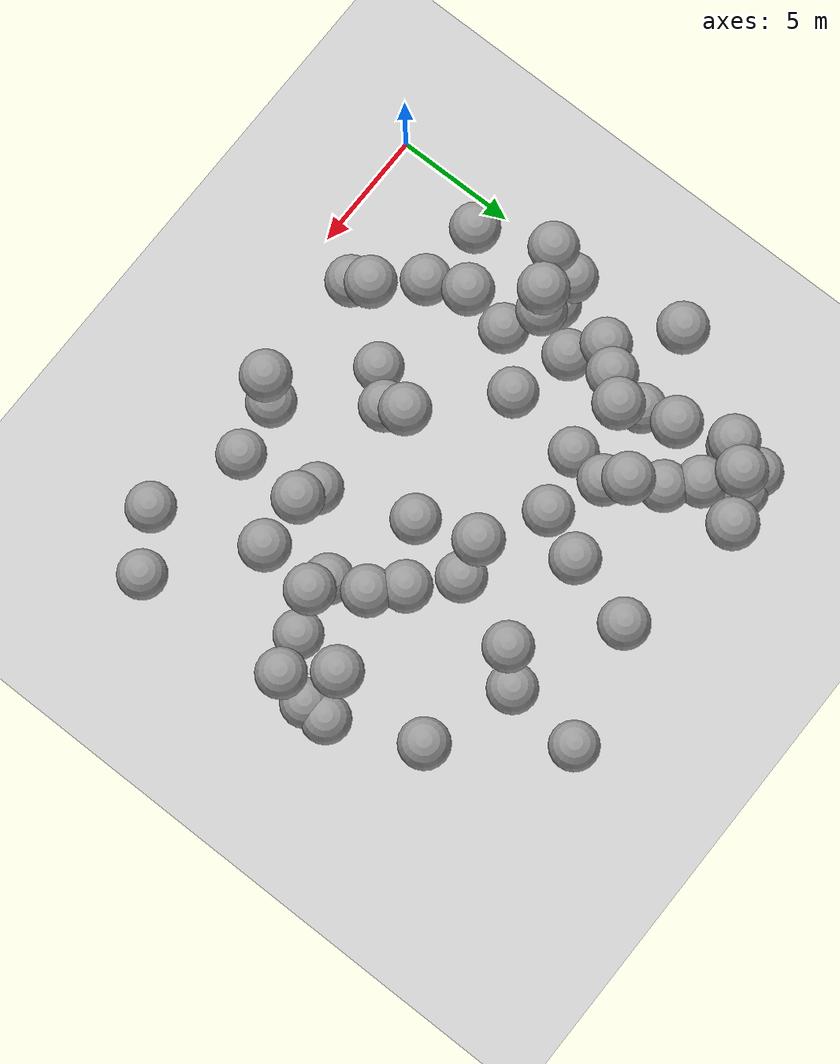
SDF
<sdf version="1.7">
 <world name="default">
  <model name="ground_plane">
   <static>1</static>
   <link name="link">
    <collision name="collision">
     <geometry><plane><normal>0 0 1</normal><size>100 100</size></plane></geometry>
     <surface>
      <contact><collide_bitmask>65535</collide_bitmask></contact>
      <friction><ode><mu>100</mu><mu2>50</mu2></ode></friction>
     </surface>
    </collision>
    <visual name="visual">
     <cast_shadows>0</cast_shadows>
     <geometry><plane><normal>0 0 1</normal><size>100 100</size></plane></geometry>
     <material>
      <script><uri>file://media/materials/scripts/gazebo.material</uri><name>Gazebo/Grey</name></script>
     </material>
    </visual>
   </link>
  </model>
  <model name="sphere_0">
   <static>1</static>
   <pose>3 12 6 0 0 0</pose>
   <link name="link">
    <inertial>
     <mass>418.87902047863906</mass>
     <inertia>
      <ixx>167.55160819145564</ixx>
      <iyy>167.55160819145564</iyy>
      <izz>167.55160819145564</izz>
      <ixy>0</ixy>
      <ixz>0</ixz>
      <iyz>0</iyz>
     </inertia>
    </inertial>
    <collision name="collision"><geometry><sphere><radius>1.0</radius></sphere></geometry></collision>
    <visual name="visual">
     <geometry><sphere><radius>1.0</radius></sphere></geometry>
     <material>
      <script><uri>file://media/materials/scripts/gazebo.material</uri><name>Gazebo/Grey</name></script>
     </material>
    </visual>
   </link>
  </model>
  <model name="sphere_1">
   <static>1</static>
   <pose>2 19 0 0 0 0</pose>
   <link name="link">
    <inertial>
     <mass>418.87902047863906</mass>
     <inertia>
      <ixx>167.55160819145564</ixx>
      <iyy>167.55160819145564</iyy>
      <izz>167.55160819145564</izz>
      <ixy>0</ixy>
      <ixz>0</ixz>
      <iyz>0</iyz>
     </inertia>
    </inertial>
    <collision name="collision"><geometry><sphere><radius>1.0</radius></sphere></geometry></collision>
    <visual name="visual">
     <geometry><sphere><radius>1.0</radius></sphere></geometry>
     <material>
      <script><uri>file://media/materials/scripts/gazebo.material</uri><name>Gazebo/Grey</name></script>
     </material>
    </visual>
   </link>
  </model>
  <model name="sphere_4">
   <static>1</static>
   <pose>11 19 6 0 0 0</pose>
   <link name="link">
    <inertial>
     <mass>418.87902047863906</mass>
     <inertia>
      <ixx>167.55160819145564</ixx>
      <iyy>167.55160819145564</iyy>
      <izz>167.55160819145564</izz>
      <ixy>0</ixy>
      <ixz>0</ixz>
      <iyz>0</iyz>
     </inertia>
    </inertial>
    <collision name="collision"><geometry><sphere><radius>1.0</radius></sphere></geometry></collision>
    <visual name="visual">
     <geometry><sphere><radius>1.0</radius></sphere></geometry>
     <material>
      <script><uri>file://media/materials/scripts/gazebo.material</uri><name>Gazebo/Grey</name></script>
     </material>
    </visual>
   </link>
  </model>
  <model name="sphere_5">
   <static>1</static>
   <pose>6 13 1 0 0 0</pose>
   <link name="link">
    <inertial>
     <mass>418.87902047863906</mass>
     <inertia>
      <ixx>167.55160819145564</ixx>
      <iyy>167.55160819145564</iyy>
      <izz>167.55160819145564</izz>
      <ixy>0</ixy>
      <ixz>0</ixz>
      <iyz>0</iyz>
     </inertia>
    </inertial>
    <collision name="collision"><geometry><sphere><radius>1.0</radius></sphere></geometry></collision>
    <visual name="visual">
     <geometry><sphere><radius>1.0</radius></sphere></geometry>
     <material>
      <script><uri>file://media/materials/scripts/gazebo.material</uri><name>Gazebo/Grey</name></script>
     </material>
    </visual>
   </link>
  </model>
  <model name="sphere_7">
   <static>1</static>
   <pose>19 12 7 0 0 0</pose>
   <link name="link">
    <inertial>
     <mass>418.87902047863906</mass>
     <inertia>
      <ixx>167.55160819145564</ixx>
      <iyy>167.55160819145564</iyy>
      <izz>167.55160819145564</izz>
      <ixy>0</ixy>
      <ixz>0</ixz>
      <iyz>0</iyz>
     </inertia>
    </inertial>
    <collision name="collision"><geometry><sphere><radius>1.0</radius></sphere></geometry></collision>
    <visual name="visual">
     <geometry><sphere><radius>1.0</radius></sphere></geometry>
     <material>
      <script><uri>file://media/materials/scripts/gazebo.material</uri><name>Gazebo/Grey</name></script>
     </material>
    </visual>
   </link>
  </model>
  <model name="sphere_8">
   <static>1</static>
   <pose>1 8 5 0 0 0</pose>
   <link name="link">
    <inertial>
     <mass>418.87902047863906</mass>
     <inertia>
      <ixx>167.55160819145564</ixx>
      <iyy>167.55160819145564</iyy>
      <izz>167.55160819145564</izz>
      <ixy>0</ixy>
      <ixz>0</ixz>
      <iyz>0</iyz>
     </inertia>
    </inertial>
    <collision name="collision"><geometry><sphere><radius>1.0</radius></sphere></geometry></collision>
    <visual name="visual">
     <geometry><sphere><radius>1.0</radius></sphere></geometry>
     <material>
      <script><uri>file://media/materials/scripts/gazebo.material</uri><name>Gazebo/Grey</name></script>
     </material>
    </visual>
   </link>
  </model>
  <model name="sphere_10">
   <static>1</static>
   <pose>14 3 1 0 0 0</pose>
   <link name="link">
    <inertial>
     <mass>418.87902047863906</mass>
     <inertia>
      <ixx>167.55160819145564</ixx>
      <iyy>167.55160819145564</iyy>
      <izz>167.55160819145564</izz>
      <ixy>0</ixy>
      <ixz>0</ixz>
      <iyz>0</iyz>
     </inertia>
    </inertial>
    <collision name="collision"><geometry><sphere><radius>1.0</radius></sphere></geometry></collision>
    <visual name="visual">
     <geometry><sphere><radius>1.0</radius></sphere></geometry>
     <material>
      <script><uri>file://media/materials/scripts/gazebo.material</uri><name>Gazebo/Grey</name></script>
     </material>
    </visual>
   </link>
  </model>
  <model name="sphere_17">
   <static>1</static>
   <pose>12 3 3 0 0 0</pose>
   <link name="link">
    <inertial>
     <mass>418.87902047863906</mass>
     <inertia>
      <ixx>167.55160819145564</ixx>
      <iyy>167.55160819145564</iyy>
      <izz>167.55160819145564</izz>
      <ixy>0</ixy>
      <ixz>0</ixz>
      <iyz>0</iyz>
     </inertia>
    </inertial>
    <collision name="collision"><geometry><sphere><radius>1.0</radius></sphere></geometry></collision>
    <visual name="visual">
     <geometry><sphere><radius>1.0</radius></sphere></geometry>
     <material>
      <script><uri>file://media/materials/scripts/gazebo.material</uri><name>Gazebo/Grey</name></script>
     </material>
    </visual>
   </link>
  </model>
  <model name="sphere_20">
   <static>1</static>
   <pose>18 2 3 0 0 0</pose>
   <link name="link">
    <inertial>
     <mass>418.87902047863906</mass>
     <inertia>
      <ixx>167.55160819145564</ixx>
      <iyy>167.55160819145564</iyy>
      <izz>167.55160819145564</izz>
      <ixy>0</ixy>
      <ixz>0</ixz>
      <iyz>0</iyz>
     </inertia>
    </inertial>
    <collision name="collision"><geometry><sphere><radius>1.0</radius></sphere></geometry></collision>
    <visual name="visual">
     <geometry><sphere><radius>1.0</radius></sphere></geometry>
     <material>
      <script><uri>file://media/materials/scripts/gazebo.material</uri><name>Gazebo/Grey</name></script>
     </material>
    </visual>
   </link>
  </model>
  <model name="sphere_21">
   <static>1</static>
   <pose>10 7 6 0 0 0</pose>
   <link name="link">
    <inertial>
     <mass>418.87902047863906</mass>
     <inertia>
      <ixx>167.55160819145564</ixx>
      <iyy>167.55160819145564</iyy>
      <izz>167.55160819145564</izz>
      <ixy>0</ixy>
      <ixz>0</ixz>
      <iyz>0</iyz>
     </inertia>
    </inertial>
    <collision name="collision"><geometry><sphere><radius>1.0</radius></sphere></geometry></collision>
    <visual name="visual">
     <geometry><sphere><radius>1.0</radius></sphere></geometry>
     <material>
      <script><uri>file://media/materials/scripts/gazebo.material</uri><name>Gazebo/Grey</name></script>
     </material>
    </visual>
   </link>
  </model>
  <model name="sphere_32">
   <static>1</static>
   <pose>6 17 6 0 0 0</pose>
   <link name="link">
    <inertial>
     <mass>418.87902047863906</mass>
     <inertia>
      <ixx>167.55160819145564</ixx>
      <iyy>167.55160819145564</iyy>
      <izz>167.55160819145564</izz>
      <ixy>0</ixy>
      <ixz>0</ixz>
      <iyz>0</iyz>
     </inertia>
    </inertial>
    <collision name="collision"><geometry><sphere><radius>1.0</radius></sphere></geometry></collision>
    <visual name="visual">
     <geometry><sphere><radius>1.0</radius></sphere></geometry>
     <material>
      <script><uri>file://media/materials/scripts/gazebo.material</uri><name>Gazebo/Grey</name></script>
     </material>
    </visual>
   </link>
  </model>
  <model name="sphere_35">
   <static>1</static>
   <pose>18 9 0 0 0 0</pose>
   <link name="link">
    <inertial>
     <mass>418.87902047863906</mass>
     <inertia>
      <ixx>167.55160819145564</ixx>
      <iyy>167.55160819145564</iyy>
      <izz>167.55160819145564</izz>
      <ixy>0</ixy>
      <ixz>0</ixz>
      <iyz>0</iyz>
     </inertia>
    </inertial>
    <collision name="collision"><geometry><sphere><radius>1.0</radius></sphere></geometry></collision>
    <visual name="visual">
     <geometry><sphere><radius>1.0</radius></sphere></geometry>
     <material>
      <script><uri>file://media/materials/scripts/gazebo.material</uri><name>Gazebo/Grey</name></script>
     </material>
    </visual>
   </link>
  </model>
  <model name="sphere_40">
   <static>1</static>
   <pose>19 16 6 0 0 0</pose>
   <link name="link">
    <inertial>
     <mass>418.87902047863906</mass>
     <inertia>
      <ixx>167.55160819145564</ixx>
      <iyy>167.55160819145564</iyy>
      <izz>167.55160819145564</izz>
      <ixy>0</ixy>
      <ixz>0</ixz>
      <iyz>0</iyz>
     </inertia>
    </inertial>
    <collision name="collision"><geometry><sphere><radius>1.0</radius></sphere></geometry></collision>
    <visual name="visual">
     <geometry><sphere><radius>1.0</radius></sphere></geometry>
     <material>
      <script><uri>file://media/materials/scripts/gazebo.material</uri><name>Gazebo/Grey</name></script>
     </material>
    </visual>
   </link>
  </model>
  <model name="sphere_44">
   <static>1</static>
   <pose>18 2 3 0 0 0</pose>
   <link name="link">
    <inertial>
     <mass>418.87902047863906</mass>
     <inertia>
      <ixx>167.55160819145564</ixx>
      <iyy>167.55160819145564</iyy>
      <izz>167.55160819145564</izz>
      <ixy>0</ixy>
      <ixz>0</ixz>
      <iyz>0</iyz>
     </inertia>
    </inertial>
    <collision name="collision"><geometry><sphere><radius>1.0</radius></sphere></geometry></collision>
    <visual name="visual">
     <geometry><sphere><radius>1.0</radius></sphere></geometry>
     <material>
      <script><uri>file://media/materials/scripts/gazebo.material</uri><name>Gazebo/Grey</name></script>
     </material>
    </visual>
   </link>
  </model>
  <model name="sphere_52">
   <static>1</static>
   <pose>5 7 8 0 0 0</pose>
   <link name="link">
    <inertial>
     <mass>418.87902047863906</mass>
     <inertia>
      <ixx>167.55160819145564</ixx>
      <iyy>167.55160819145564</iyy>
      <izz>167.55160819145564</izz>
      <ixy>0</ixy>
      <ixz>0</ixz>
      <iyz>0</iyz>
     </inertia>
    </inertial>
    <collision name="collision"><geometry><sphere><radius>1.0</radius></sphere></geometry></collision>
    <visual name="visual">
     <geometry><sphere><radius>1.0</radius></sphere></geometry>
     <material>
      <script><uri>file://media/materials/scripts/gazebo.material</uri><name>Gazebo/Grey</name></script>
     </material>
    </visual>
   </link>
  </model>
  <model name="sphere_66">
   <static>1</static>
   <pose>8 5 1 0 0 0</pose>
   <link name="link">
    <inertial>
     <mass>418.87902047863906</mass>
     <inertia>
      <ixx>167.55160819145564</ixx>
      <iyy>167.55160819145564</iyy>
      <izz>167.55160819145564</izz>
      <ixy>0</ixy>
      <ixz>0</ixz>
      <iyz>0</iyz>
     </inertia>
    </inertial>
    <collision name="collision"><geometry><sphere><radius>1.0</radius></sphere></geometry></collision>
    <visual name="visual">
     <geometry><sphere><radius>1.0</radius></sphere></geometry>
     <material>
      <script><uri>file://media/materials/scripts/gazebo.material</uri><name>Gazebo/Grey</name></script>
     </material>
    </visual>
   </link>
  </model>
  <model name="sphere_68">
   <static>1</static>
   <pose>3 9 4 0 0 0</pose>
   <link name="link">
    <inertial>
     <mass>418.87902047863906</mass>
     <inertia>
      <ixx>167.55160819145564</ixx>
      <iyy>167.55160819145564</iyy>
      <izz>167.55160819145564</izz>
      <ixy>0</ixy>
      <ixz>0</ixz>
      <iyz>0</iyz>
     </inertia>
    </inertial>
    <collision name="collision"><geometry><sphere><radius>1.0</radius></sphere></geometry></collision>
    <visual name="visual">
     <geometry><sphere><radius>1.0</radius></sphere></geometry>
     <material>
      <script><uri>file://media/materials/scripts/gazebo.material</uri><name>Gazebo/Grey</name></script>
     </material>
    </visual>
   </link>
  </model>
  <model name="sphere_69">
   <static>1</static>
   <pose>1 9 3 0 0 0</pose>
   <link name="link">
    <inertial>
     <mass>418.87902047863906</mass>
     <inertia>
      <ixx>167.55160819145564</ixx>
      <iyy>167.55160819145564</iyy>
      <izz>167.55160819145564</izz>
      <ixy>0</ixy>
      <ixz>0</ixz>
      <iyz>0</iyz>
     </inertia>
    </inertial>
    <collision name="collision"><geometry><sphere><radius>1.0</radius></sphere></geometry></collision>
    <visual name="visual">
     <geometry><sphere><radius>1.0</radius></sphere></geometry>
     <material>
      <script><uri>file://media/materials/scripts/gazebo.material</uri><name>Gazebo/Grey</name></script>
     </material>
    </visual>
   </link>
  </model>
  <model name="sphere_72">
   <static>1</static>
   <pose>5 14 8 0 0 0</pose>
   <link name="link">
    <inertial>
     <mass>418.87902047863906</mass>
     <inertia>
      <ixx>167.55160819145564</ixx>
      <iyy>167.55160819145564</iyy>
      <izz>167.55160819145564</izz>
      <ixy>0</ixy>
      <ixz>0</ixz>
      <iyz>0</iyz>
     </inertia>
    </inertial>
    <collision name="collision"><geometry><sphere><radius>1.0</radius></sphere></geometry></collision>
    <visual name="visual">
     <geometry><sphere><radius>1.0</radius></sphere></geometry>
     <material>
      <script><uri>file://media/materials/scripts/gazebo.material</uri><name>Gazebo/Grey</name></script>
     </material>
    </visual>
   </link>
  </model>
  <model name="sphere_74">
   <static>1</static>
   <pose>14 16 4 0 0 0</pose>
   <link name="link">
    <inertial>
     <mass>418.87902047863906</mass>
     <inertia>
      <ixx>167.55160819145564</ixx>
      <iyy>167.55160819145564</iyy>
      <izz>167.55160819145564</izz>
      <ixy>0</ixy>
      <ixz>0</ixz>
      <iyz>0</iyz>
     </inertia>
    </inertial>
    <collision name="collision"><geometry><sphere><radius>1.0</radius></sphere></geometry></collision>
    <visual name="visual">
     <geometry><sphere><radius>1.0</radius></sphere></geometry>
     <material>
      <script><uri>file://media/materials/scripts/gazebo.material</uri><name>Gazebo/Grey</name></script>
     </material>
    </visual>
   </link>
  </model>
  <model name="sphere_75">
   <static>1</static>
   <pose>4 13 7 0 0 0</pose>
   <link name="link">
    <inertial>
     <mass>418.87902047863906</mass>
     <inertia>
      <ixx>167.55160819145564</ixx>
      <iyy>167.55160819145564</iyy>
      <izz>167.55160819145564</izz>
      <ixy>0</ixy>
      <ixz>0</ixz>
      <iyz>0</iyz>
     </inertia>
    </inertial>
    <collision name="collision"><geometry><sphere><radius>1.0</radius></sphere></geometry></collision>
    <visual name="visual">
     <geometry><sphere><radius>1.0</radius></sphere></geometry>
     <material>
      <script><uri>file://media/materials/scripts/gazebo.material</uri><name>Gazebo/Grey</name></script>
     </material>
    </visual>
   </link>
  </model>
  <model name="sphere_80">
   <static>1</static>
   <pose>14 7 6 0 0 0</pose>
   <link name="link">
    <inertial>
     <mass>418.87902047863906</mass>
     <inertia>
      <ixx>167.55160819145564</ixx>
      <iyy>167.55160819145564</iyy>
      <izz>167.55160819145564</izz>
      <ixy>0</ixy>
      <ixz>0</ixz>
      <iyz>0</iyz>
     </inertia>
    </inertial>
    <collision name="collision"><geometry><sphere><radius>1.0</radius></sphere></geometry></collision>
    <visual name="visual">
     <geometry><sphere><radius>1.0</radius></sphere></geometry>
     <material>
      <script><uri>file://media/materials/scripts/gazebo.material</uri><name>Gazebo/Grey</name></script>
     </material>
    </visual>
   </link>
  </model>
  <model name="sphere_82">
   <static>1</static>
   <pose>16 11 7 0 0 0</pose>
   <link name="link">
    <inertial>
     <mass>418.87902047863906</mass>
     <inertia>
      <ixx>167.55160819145564</ixx>
      <iyy>167.55160819145564</iyy>
      <izz>167.55160819145564</izz>
      <ixy>0</ixy>
      <ixz>0</ixz>
      <iyz>0</iyz>
     </inertia>
    </inertial>
    <collision name="collision"><geometry><sphere><radius>1.0</radius></sphere></geometry></collision>
    <visual name="visual">
     <geometry><sphere><radius>1.0</radius></sphere></geometry>
     <material>
      <script><uri>file://media/materials/scripts/gazebo.material</uri><name>Gazebo/Grey</name></script>
     </material>
    </visual>
   </link>
  </model>
  <model name="sphere_83">
   <static>1</static>
   <pose>20 3 1 0 0 0</pose>
   <link name="link">
    <inertial>
     <mass>418.87902047863906</mass>
     <inertia>
      <ixx>167.55160819145564</ixx>
      <iyy>167.55160819145564</iyy>
      <izz>167.55160819145564</izz>
      <ixy>0</ixy>
      <ixz>0</ixz>
      <iyz>0</iyz>
     </inertia>
    </inertial>
    <collision name="collision"><geometry><sphere><radius>1.0</radius></sphere></geometry></collision>
    <visual name="visual">
     <geometry><sphere><radius>1.0</radius></sphere></geometry>
     <material>
      <script><uri>file://media/materials/scripts/gazebo.material</uri><name>Gazebo/Grey</name></script>
     </material>
    </visual>
   </link>
  </model>
  <model name="sphere_88">
   <static>1</static>
   <pose>10 16 5 0 0 0</pose>
   <link name="link">
    <inertial>
     <mass>418.87902047863906</mass>
     <inertia>
      <ixx>167.55160819145564</ixx>
      <iyy>167.55160819145564</iyy>
      <izz>167.55160819145564</izz>
      <ixy>0</ixy>
      <ixz>0</ixz>
      <iyz>0</iyz>
     </inertia>
    </inertial>
    <collision name="collision"><geometry><sphere><radius>1.0</radius></sphere></geometry></collision>
    <visual name="visual">
     <geometry><sphere><radius>1.0</radius></sphere></geometry>
     <material>
      <script><uri>file://media/materials/scripts/gazebo.material</uri><name>Gazebo/Grey</name></script>
     </material>
    </visual>
   </link>
  </model>
  <model name="sphere_91">
   <static>1</static>
   <pose>7 4 8 0 0 0</pose>
   <link name="link">
    <inertial>
     <mass>418.87902047863906</mass>
     <inertia>
      <ixx>167.55160819145564</ixx>
      <iyy>167.55160819145564</iyy>
      <izz>167.55160819145564</izz>
      <ixy>0</ixy>
      <ixz>0</ixz>
      <iyz>0</iyz>
     </inertia>
    </inertial>
    <collision name="collision"><geometry><sphere><radius>1.0</radius></sphere></geometry></collision>
    <visual name="visual">
     <geometry><sphere><radius>1.0</radius></sphere></geometry>
     <material>
      <script><uri>file://media/materials/scripts/gazebo.material</uri><name>Gazebo/Grey</name></script>
     </material>
    </visual>
   </link>
  </model>
  <model name="sphere_93">
   <static>1</static>
   <pose>16 9 3 0 0 0</pose>
   <link name="link">
    <inertial>
     <mass>418.87902047863906</mass>
     <inertia>
      <ixx>167.55160819145564</ixx>
      <iyy>167.55160819145564</iyy>
      <izz>167.55160819145564</izz>
      <ixy>0</ixy>
      <ixz>0</ixz>
      <iyz>0</iyz>
     </inertia>
    </inertial>
    <collision name="collision"><geometry><sphere><radius>1.0</radius></sphere></geometry></collision>
    <visual name="visual">
     <geometry><sphere><radius>1.0</radius></sphere></geometry>
     <material>
      <script><uri>file://media/materials/scripts/gazebo.material</uri><name>Gazebo/Grey</name></script>
     </material>
    </visual>
   </link>
  </model>
  <model name="sphere_98">
   <static>1</static>
   <pose>17 7 7 0 0 0</pose>
   <link name="link">
    <inertial>
     <mass>418.87902047863906</mass>
     <inertia>
      <ixx>167.55160819145564</ixx>
      <iyy>167.55160819145564</iyy>
      <izz>167.55160819145564</izz>
      <ixy>0</ixy>
      <ixz>0</ixz>
      <iyz>0</iyz>
     </inertia>
    </inertial>
    <collision name="collision"><geometry><sphere><radius>1.0</radius></sphere></geometry></collision>
    <visual name="visual">
     <geometry><sphere><radius>1.0</radius></sphere></geometry>
     <material>
      <script><uri>file://media/materials/scripts/gazebo.material</uri><name>Gazebo/Grey</name></script>
     </material>
    </visual>
   </link>
  </model>
  <model name="sphere_102">
   <static>1</static>
   <pose>6 10 3 0 0 0</pose>
   <link name="link">
    <inertial>
     <mass>418.87902047863906</mass>
     <inertia>
      <ixx>167.55160819145564</ixx>
      <iyy>167.55160819145564</iyy>
      <izz>167.55160819145564</izz>
      <ixy>0</ixy>
      <ixz>0</ixz>
      <iyz>0</iyz>
     </inertia>
    </inertial>
    <collision name="collision"><geometry><sphere><radius>1.0</radius></sphere></geometry></collision>
    <visual name="visual">
     <geometry><sphere><radius>1.0</radius></sphere></geometry>
     <material>
      <script><uri>file://media/materials/scripts/gazebo.material</uri><name>Gazebo/Grey</name></script>
     </material>
    </visual>
   </link>
  </model>
  <model name="sphere_103">
   <static>1</static>
   <pose>4 16 7 0 0 0</pose>
   <link name="link">
    <inertial>
     <mass>418.87902047863906</mass>
     <inertia>
      <ixx>167.55160819145564</ixx>
      <iyy>167.55160819145564</iyy>
      <izz>167.55160819145564</izz>
      <ixy>0</ixy>
      <ixz>0</ixz>
      <iyz>0</iyz>
     </inertia>
    </inertial>
    <collision name="collision"><geometry><sphere><radius>1.0</radius></sphere></geometry></collision>
    <visual name="visual">
     <geometry><sphere><radius>1.0</radius></sphere></geometry>
     <material>
      <script><uri>file://media/materials/scripts/gazebo.material</uri><name>Gazebo/Grey</name></script>
     </material>
    </visual>
   </link>
  </model>
  <model name="sphere_105">
   <static>1</static>
   <pose>4 8 2 0 0 0</pose>
   <link name="link">
    <inertial>
     <mass>418.87902047863906</mass>
     <inertia>
      <ixx>167.55160819145564</ixx>
      <iyy>167.55160819145564</iyy>
      <izz>167.55160819145564</izz>
      <ixy>0</ixy>
      <ixz>0</ixz>
      <iyz>0</iyz>
     </inertia>
    </inertial>
    <collision name="collision"><geometry><sphere><radius>1.0</radius></sphere></geometry></collision>
    <visual name="visual">
     <geometry><sphere><radius>1.0</radius></sphere></geometry>
     <material>
      <script><uri>file://media/materials/scripts/gazebo.material</uri><name>Gazebo/Grey</name></script>
     </material>
    </visual>
   </link>
  </model>
  <model name="sphere_118">
   <static>1</static>
   <pose>5 18 6 0 0 0</pose>
   <link name="link">
    <inertial>
     <mass>418.87902047863906</mass>
     <inertia>
      <ixx>167.55160819145564</ixx>
      <iyy>167.55160819145564</iyy>
      <izz>167.55160819145564</izz>
      <ixy>0</ixy>
      <ixz>0</ixz>
      <iyz>0</iyz>
     </inertia>
    </inertial>
    <collision name="collision"><geometry><sphere><radius>1.0</radius></sphere></geometry></collision>
    <visual name="visual">
     <geometry><sphere><radius>1.0</radius></sphere></geometry>
     <material>
      <script><uri>file://media/materials/scripts/gazebo.material</uri><name>Gazebo/Grey</name></script>
     </material>
    </visual>
   </link>
  </model>
  <model name="sphere_123">
   <static>1</static>
   <pose>2 5 4 0 0 0</pose>
   <link name="link">
    <inertial>
     <mass>418.87902047863906</mass>
     <inertia>
      <ixx>167.55160819145564</ixx>
      <iyy>167.55160819145564</iyy>
      <izz>167.55160819145564</izz>
      <ixy>0</ixy>
      <ixz>0</ixz>
      <iyz>0</iyz>
     </inertia>
    </inertial>
    <collision name="collision"><geometry><sphere><radius>1.0</radius></sphere></geometry></collision>
    <visual name="visual">
     <geometry><sphere><radius>1.0</radius></sphere></geometry>
     <material>
      <script><uri>file://media/materials/scripts/gazebo.material</uri><name>Gazebo/Grey</name></script>
     </material>
    </visual>
   </link>
  </model>
  <model name="sphere_127">
   <static>1</static>
   <pose>6 20 8 0 0 0</pose>
   <link name="link">
    <inertial>
     <mass>418.87902047863906</mass>
     <inertia>
      <ixx>167.55160819145564</ixx>
      <iyy>167.55160819145564</iyy>
      <izz>167.55160819145564</izz>
      <ixy>0</ixy>
      <ixz>0</ixz>
      <iyz>0</iyz>
     </inertia>
    </inertial>
    <collision name="collision"><geometry><sphere><radius>1.0</radius></sphere></geometry></collision>
    <visual name="visual">
     <geometry><sphere><radius>1.0</radius></sphere></geometry>
     <material>
      <script><uri>file://media/materials/scripts/gazebo.material</uri><name>Gazebo/Grey</name></script>
     </material>
    </visual>
   </link>
  </model>
  <model name="sphere_129">
   <static>1</static>
   <pose>3 18 6 0 0 0</pose>
   <link name="link">
    <inertial>
     <mass>418.87902047863906</mass>
     <inertia>
      <ixx>167.55160819145564</ixx>
      <iyy>167.55160819145564</iyy>
      <izz>167.55160819145564</izz>
      <ixy>0</ixy>
      <ixz>0</ixz>
      <iyz>0</iyz>
     </inertia>
    </inertial>
    <collision name="collision"><geometry><sphere><radius>1.0</radius></sphere></geometry></collision>
    <visual name="visual">
     <geometry><sphere><radius>1.0</radius></sphere></geometry>
     <material>
      <script><uri>file://media/materials/scripts/gazebo.material</uri><name>Gazebo/Grey</name></script>
     </material>
    </visual>
   </link>
  </model>
  <model name="sphere_131">
   <static>1</static>
   <pose>20 12 1 0 0 0</pose>
   <link name="link">
    <inertial>
     <mass>418.87902047863906</mass>
     <inertia>
      <ixx>167.55160819145564</ixx>
      <iyy>167.55160819145564</iyy>
      <izz>167.55160819145564</izz>
      <ixy>0</ixy>
      <ixz>0</ixz>
      <iyz>0</iyz>
     </inertia>
    </inertial>
    <collision name="collision"><geometry><sphere><radius>1.0</radius></sphere></geometry></collision>
    <visual name="visual">
     <geometry><sphere><radius>1.0</radius></sphere></geometry>
     <material>
      <script><uri>file://media/materials/scripts/gazebo.material</uri><name>Gazebo/Grey</name></script>
     </material>
    </visual>
   </link>
  </model>
  <model name="sphere_134">
   <static>1</static>
   <pose>3 18 5 0 0 0</pose>
   <link name="link">
    <inertial>
     <mass>418.87902047863906</mass>
     <inertia>
      <ixx>167.55160819145564</ixx>
      <iyy>167.55160819145564</iyy>
      <izz>167.55160819145564</izz>
      <ixy>0</ixy>
      <ixz>0</ixz>
      <iyz>0</iyz>
     </inertia>
    </inertial>
    <collision name="collision"><geometry><sphere><radius>1.0</radius></sphere></geometry></collision>
    <visual name="visual">
     <geometry><sphere><radius>1.0</radius></sphere></geometry>
     <material>
      <script><uri>file://media/materials/scripts/gazebo.material</uri><name>Gazebo/Grey</name></script>
     </material>
    </visual>
   </link>
  </model>
  <model name="sphere_135">
   <static>1</static>
   <pose>1 14 7 0 0 0</pose>
   <link name="link">
    <inertial>
     <mass>418.87902047863906</mass>
     <inertia>
      <ixx>167.55160819145564</ixx>
      <iyy>167.55160819145564</iyy>
      <izz>167.55160819145564</izz>
      <ixy>0</ixy>
      <ixz>0</ixz>
      <iyz>0</iyz>
     </inertia>
    </inertial>
    <collision name="collision"><geometry><sphere><radius>1.0</radius></sphere></geometry></collision>
    <visual name="visual">
     <geometry><sphere><radius>1.0</radius></sphere></geometry>
     <material>
      <script><uri>file://media/materials/scripts/gazebo.material</uri><name>Gazebo/Grey</name></script>
     </material>
    </visual>
   </link>
  </model>
  <model name="sphere_139">
   <static>1</static>
   <pose>3 14 1 0 0 0</pose>
   <link name="link">
    <inertial>
     <mass>418.87902047863906</mass>
     <inertia>
      <ixx>167.55160819145564</ixx>
      <iyy>167.55160819145564</iyy>
      <izz>167.55160819145564</izz>
      <ixy>0</ixy>
      <ixz>0</ixz>
      <iyz>0</iyz>
     </inertia>
    </inertial>
    <collision name="collision"><geometry><sphere><radius>1.0</radius></sphere></geometry></collision>
    <visual name="visual">
     <geometry><sphere><radius>1.0</radius></sphere></geometry>
     <material>
      <script><uri>file://media/materials/scripts/gazebo.material</uri><name>Gazebo/Grey</name></script>
     </material>
    </visual>
   </link>
  </model>
  <model name="sphere_143">
   <static>1</static>
   <pose>15 12 7 0 0 0</pose>
   <link name="link">
    <inertial>
     <mass>418.87902047863906</mass>
     <inertia>
      <ixx>167.55160819145564</ixx>
      <iyy>167.55160819145564</iyy>
      <izz>167.55160819145564</izz>
      <ixy>0</ixy>
      <ixz>0</ixz>
      <iyz>0</iyz>
     </inertia>
    </inertial>
    <collision name="collision"><geometry><sphere><radius>1.0</radius></sphere></geometry></collision>
    <visual name="visual">
     <geometry><sphere><radius>1.0</radius></sphere></geometry>
     <material>
      <script><uri>file://media/materials/scripts/gazebo.material</uri><name>Gazebo/Grey</name></script>
     </material>
    </visual>
   </link>
  </model>
  <model name="sphere_147">
   <static>1</static>
   <pose>2 9 2 0 0 0</pose>
   <link name="link">
    <inertial>
     <mass>418.87902047863906</mass>
     <inertia>
      <ixx>167.55160819145564</ixx>
      <iyy>167.55160819145564</iyy>
      <izz>167.55160819145564</izz>
      <ixy>0</ixy>
      <ixz>0</ixz>
      <iyz>0</iyz>
     </inertia>
    </inertial>
    <collision name="collision"><geometry><sphere><radius>1.0</radius></sphere></geometry></collision>
    <visual name="visual">
     <geometry><sphere><radius>1.0</radius></sphere></geometry>
     <material>
      <script><uri>file://media/materials/scripts/gazebo.material</uri><name>Gazebo/Grey</name></script>
     </material>
    </visual>
   </link>
  </model>
  <model name="sphere_152">
   <static>1</static>
   <pose>15 20 1 0 0 0</pose>
   <link name="link">
    <inertial>
     <mass>418.87902047863906</mass>
     <inertia>
      <ixx>167.55160819145564</ixx>
      <iyy>167.55160819145564</iyy>
      <izz>167.55160819145564</izz>
      <ixy>0</ixy>
      <ixz>0</ixz>
      <iyz>0</iyz>
     </inertia>
    </inertial>
    <collision name="collision"><geometry><sphere><radius>1.0</radius></sphere></geometry></collision>
    <visual name="visual">
     <geometry><sphere><radius>1.0</radius></sphere></geometry>
     <material>
      <script><uri>file://media/materials/scripts/gazebo.material</uri><name>Gazebo/Grey</name></script>
     </material>
    </visual>
   </link>
  </model>
  <model name="sphere_154">
   <static>1</static>
   <pose>4 11 5 0 0 0</pose>
   <link name="link">
    <inertial>
     <mass>418.87902047863906</mass>
     <inertia>
      <ixx>167.55160819145564</ixx>
      <iyy>167.55160819145564</iyy>
      <izz>167.55160819145564</izz>
      <ixy>0</ixy>
      <ixz>0</ixz>
      <iyz>0</iyz>
     </inertia>
    </inertial>
    <collision name="collision"><geometry><sphere><radius>1.0</radius></sphere></geometry></collision>
    <visual name="visual">
     <geometry><sphere><radius>1.0</radius></sphere></geometry>
     <material>
      <script><uri>file://media/materials/scripts/gazebo.material</uri><name>Gazebo/Grey</name></script>
     </material>
    </visual>
   </link>
  </model>
  <model name="sphere_164">
   <static>1</static>
   <pose>20 10 4 0 0 0</pose>
   <link name="link">
    <inertial>
     <mass>418.87902047863906</mass>
     <inertia>
      <ixx>167.55160819145564</ixx>
      <iyy>167.55160819145564</iyy>
      <izz>167.55160819145564</izz>
      <ixy>0</ixy>
      <ixz>0</ixz>
      <iyz>0</iyz>
     </inertia>
    </inertial>
    <collision name="collision"><geometry><sphere><radius>1.0</radius></sphere></geometry></collision>
    <visual name="visual">
     <geometry><sphere><radius>1.0</radius></sphere></geometry>
     <material>
      <script><uri>file://media/materials/scripts/gazebo.material</uri><name>Gazebo/Grey</name></script>
     </material>
    </visual>
   </link>
  </model>
  <model name="sphere_165">
   <static>1</static>
   <pose>9 14 4 0 0 0</pose>
   <link name="link">
    <inertial>
     <mass>418.87902047863906</mass>
     <inertia>
      <ixx>167.55160819145564</ixx>
      <iyy>167.55160819145564</iyy>
      <izz>167.55160819145564</izz>
      <ixy>0</ixy>
      <ixz>0</ixz>
      <iyz>0</iyz>
     </inertia>
    </inertial>
    <collision name="collision"><geometry><sphere><radius>1.0</radius></sphere></geometry></collision>
    <visual name="visual">
     <geometry><sphere><radius>1.0</radius></sphere></geometry>
     <material>
      <script><uri>file://media/materials/scripts/gazebo.material</uri><name>Gazebo/Grey</name></script>
     </material>
    </visual>
   </link>
  </model>
  <model name="sphere_168">
   <static>1</static>
   <pose>12 13 7 0 0 0</pose>
   <link name="link">
    <inertial>
     <mass>418.87902047863906</mass>
     <inertia>
      <ixx>167.55160819145564</ixx>
      <iyy>167.55160819145564</iyy>
      <izz>167.55160819145564</izz>
      <ixy>0</ixy>
      <ixz>0</ixz>
      <iyz>0</iyz>
     </inertia>
    </inertial>
    <collision name="collision"><geometry><sphere><radius>1.0</radius></sphere></geometry></collision>
    <visual name="visual">
     <geometry><sphere><radius>1.0</radius></sphere></geometry>
     <material>
      <script><uri>file://media/materials/scripts/gazebo.material</uri><name>Gazebo/Grey</name></script>
     </material>
    </visual>
   </link>
  </model>
  <model name="sphere_170">
   <static>1</static>
   <pose>13 13 4 0 0 0</pose>
   <link name="link">
    <inertial>
     <mass>418.87902047863906</mass>
     <inertia>
      <ixx>167.55160819145564</ixx>
      <iyy>167.55160819145564</iyy>
      <izz>167.55160819145564</izz>
      <ixy>0</ixy>
      <ixz>0</ixz>
      <iyz>0</iyz>
     </inertia>
    </inertial>
    <collision name="collision"><geometry><sphere><radius>1.0</radius></sphere></geometry></collision>
    <visual name="visual">
     <geometry><sphere><radius>1.0</radius></sphere></geometry>
     <material>
      <script><uri>file://media/materials/scripts/gazebo.material</uri><name>Gazebo/Grey</name></script>
     </material>
    </visual>
   </link>
  </model>
  <model name="sphere_175">
   <static>1</static>
   <pose>4 19 7 0 0 0</pose>
   <link name="link">
    <inertial>
     <mass>418.87902047863906</mass>
     <inertia>
      <ixx>167.55160819145564</ixx>
      <iyy>167.55160819145564</iyy>
      <izz>167.55160819145564</izz>
      <ixy>0</ixy>
      <ixz>0</ixz>
      <iyz>0</iyz>
     </inertia>
    </inertial>
    <collision name="collision"><geometry><sphere><radius>1.0</radius></sphere></geometry></collision>
    <visual name="visual">
     <geometry><sphere><radius>1.0</radius></sphere></geometry>
     <material>
      <script><uri>file://media/materials/scripts/gazebo.material</uri><name>Gazebo/Grey</name></script>
     </material>
    </visual>
   </link>
  </model>
  <model name="sphere_182">
   <static>1</static>
   <pose>15 17 3 0 0 0</pose>
   <link name="link">
    <inertial>
     <mass>418.87902047863906</mass>
     <inertia>
      <ixx>167.55160819145564</ixx>
      <iyy>167.55160819145564</iyy>
      <izz>167.55160819145564</izz>
      <ixy>0</ixy>
      <ixz>0</ixz>
      <iyz>0</iyz>
     </inertia>
    </inertial>
    <collision name="collision"><geometry><sphere><radius>1.0</radius></sphere></geometry></collision>
    <visual name="visual">
     <geometry><sphere><radius>1.0</radius></sphere></geometry>
     <material>
      <script><uri>file://media/materials/scripts/gazebo.material</uri><name>Gazebo/Grey</name></script>
     </material>
    </visual>
   </link>
  </model>
  <model name="sphere_186">
   <static>1</static>
   <pose>3 9 7 0 0 0</pose>
   <link name="link">
    <inertial>
     <mass>418.87902047863906</mass>
     <inertia>
      <ixx>167.55160819145564</ixx>
      <iyy>167.55160819145564</iyy>
      <izz>167.55160819145564</izz>
      <ixy>0</ixy>
      <ixz>0</ixz>
      <iyz>0</iyz>
     </inertia>
    </inertial>
    <collision name="collision"><geometry><sphere><radius>1.0</radius></sphere></geometry></collision>
    <visual name="visual">
     <geometry><sphere><radius>1.0</radius></sphere></geometry>
     <material>
      <script><uri>file://media/materials/scripts/gazebo.material</uri><name>Gazebo/Grey</name></script>
     </material>
    </visual>
   </link>
  </model>
  <model name="sphere_191">
   <static>1</static>
   <pose>12 10 2 0 0 0</pose>
   <link name="link">
    <inertial>
     <mass>418.87902047863906</mass>
     <inertia>
      <ixx>167.55160819145564</ixx>
      <iyy>167.55160819145564</iyy>
      <izz>167.55160819145564</izz>
      <ixy>0</ixy>
      <ixz>0</ixz>
      <iyz>0</iyz>
     </inertia>
    </inertial>
    <collision name="collision"><geometry><sphere><radius>1.0</radius></sphere></geometry></collision>
    <visual name="visual">
     <geometry><sphere><radius>1.0</radius></sphere></geometry>
     <material>
      <script><uri>file://media/materials/scripts/gazebo.material</uri><name>Gazebo/Grey</name></script>
     </material>
    </visual>
   </link>
  </model>
  <model name="sphere_192">
   <static>1</static>
   <pose>12 3 7 0 0 0</pose>
   <link name="link">
    <inertial>
     <mass>418.87902047863906</mass>
     <inertia>
      <ixx>167.55160819145564</ixx>
      <iyy>167.55160819145564</iyy>
      <izz>167.55160819145564</izz>
      <ixy>0</ixy>
      <ixz>0</ixz>
      <iyz>0</iyz>
     </inertia>
    </inertial>
    <collision name="collision"><geometry><sphere><radius>1.0</radius></sphere></geometry></collision>
    <visual name="visual">
     <geometry><sphere><radius>1.0</radius></sphere></geometry>
     <material>
      <script><uri>file://media/materials/scripts/gazebo.material</uri><name>Gazebo/Grey</name></script>
     </material>
    </visual>
   </link>
  </model>
  <model name="sphere_194">
   <static>1</static>
   <pose>20 11 1 0 0 0</pose>
   <link name="link">
    <inertial>
     <mass>418.87902047863906</mass>
     <inertia>
      <ixx>167.55160819145564</ixx>
      <iyy>167.55160819145564</iyy>
      <izz>167.55160819145564</izz>
      <ixy>0</ixy>
      <ixz>0</ixz>
      <iyz>0</iyz>
     </inertia>
    </inertial>
    <collision name="collision"><geometry><sphere><radius>1.0</radius></sphere></geometry></collision>
    <visual name="visual">
     <geometry><sphere><radius>1.0</radius></sphere></geometry>
     <material>
      <script><uri>file://media/materials/scripts/gazebo.material</uri><name>Gazebo/Grey</name></script>
     </material>
    </visual>
   </link>
  </model>
  <model name="sphere_198">
   <static>1</static>
   <pose>10 8 8 0 0 0</pose>
   <link name="link">
    <inertial>
     <mass>418.87902047863906</mass>
     <inertia>
      <ixx>167.55160819145564</ixx>
      <iyy>167.55160819145564</iyy>
      <izz>167.55160819145564</izz>
      <ixy>0</ixy>
      <ixz>0</ixz>
      <iyz>0</iyz>
     </inertia>
    </inertial>
    <collision name="collision"><geometry><sphere><radius>1.0</radius></sphere></geometry></collision>
    <visual name="visual">
     <geometry><sphere><radius>1.0</radius></sphere></geometry>
     <material>
      <script><uri>file://media/materials/scripts/gazebo.material</uri><name>Gazebo/Grey</name></script>
     </material>
    </visual>
   </link>
  </model>
  <model name="sphere_199">
   <static>1</static>
   <pose>20 3 1 0 0 0</pose>
   <link name="link">
    <inertial>
     <mass>418.87902047863906</mass>
     <inertia>
      <ixx>167.55160819145564</ixx>
      <iyy>167.55160819145564</iyy>
      <izz>167.55160819145564</izz>
      <ixy>0</ixy>
      <ixz>0</ixz>
      <iyz>0</iyz>
     </inertia>
    </inertial>
    <collision name="collision"><geometry><sphere><radius>1.0</radius></sphere></geometry></collision>
    <visual name="visual">
     <geometry><sphere><radius>1.0</radius></sphere></geometry>
     <material>
      <script><uri>file://media/materials/scripts/gazebo.material</uri><name>Gazebo/Grey</name></script>
     </material>
    </visual>
   </link>
  </model>
  <model name="sphere_215">
   <static>1</static>
   <pose>15 7 8 0 0 0</pose>
   <link name="link">
    <inertial>
     <mass>418.87902047863906</mass>
     <inertia>
      <ixx>167.55160819145564</ixx>
      <iyy>167.55160819145564</iyy>
      <izz>167.55160819145564</izz>
      <ixy>0</ixy>
      <ixz>0</ixz>
      <iyz>0</iyz>
     </inertia>
    </inertial>
    <collision name="collision"><geometry><sphere><radius>1.0</radius></sphere></geometry></collision>
    <visual name="visual">
     <geometry><sphere><radius>1.0</radius></sphere></geometry>
     <material>
      <script><uri>file://media/materials/scripts/gazebo.material</uri><name>Gazebo/Grey</name></script>
     </material>
    </visual>
   </link>
  </model>
  <model name="sphere_221">
   <static>1</static>
   <pose>17 9 5 0 0 0</pose>
   <link name="link">
    <inertial>
     <mass>418.87902047863906</mass>
     <inertia>
      <ixx>167.55160819145564</ixx>
      <iyy>167.55160819145564</iyy>
      <izz>167.55160819145564</izz>
      <ixy>0</ixy>
      <ixz>0</ixz>
      <iyz>0</iyz>
     </inertia>
    </inertial>
    <collision name="collision"><geometry><sphere><radius>1.0</radius></sphere></geometry></collision>
    <visual name="visual">
     <geometry><sphere><radius>1.0</radius></sphere></geometry>
     <material>
      <script><uri>file://media/materials/scripts/gazebo.material</uri><name>Gazebo/Grey</name></script>
     </material>
    </visual>
   </link>
  </model>
  <model name="sphere_222">
   <static>1</static>
   <pose>4 8 2 0 0 0</pose>
   <link name="link">
    <inertial>
     <mass>418.87902047863906</mass>
     <inertia>
      <ixx>167.55160819145564</ixx>
      <iyy>167.55160819145564</iyy>
      <izz>167.55160819145564</izz>
      <ixy>0</ixy>
      <ixz>0</ixz>
      <iyz>0</iyz>
     </inertia>
    </inertial>
    <collision name="collision"><geometry><sphere><radius>1.0</radius></sphere></geometry></collision>
    <visual name="visual">
     <geometry><sphere><radius>1.0</radius></sphere></geometry>
     <material>
      <script><uri>file://media/materials/scripts/gazebo.material</uri><name>Gazebo/Grey</name></script>
     </material>
    </visual>
   </link>
  </model>
  <model name="sphere_226">
   <static>1</static>
   <pose>7 3 6 0 0 0</pose>
   <link name="link">
    <inertial>
     <mass>418.87902047863906</mass>
     <inertia>
      <ixx>167.55160819145564</ixx>
      <iyy>167.55160819145564</iyy>
      <izz>167.55160819145564</izz>
      <ixy>0</ixy>
      <ixz>0</ixz>
      <iyz>0</iyz>
     </inertia>
    </inertial>
    <collision name="collision"><geometry><sphere><radius>1.0</radius></sphere></geometry></collision>
    <visual name="visual">
     <geometry><sphere><radius>1.0</radius></sphere></geometry>
     <material>
      <script><uri>file://media/materials/scripts/gazebo.material</uri><name>Gazebo/Grey</name></script>
     </material>
    </visual>
   </link>
  </model>
  <model name="sphere_227">
   <static>1</static>
   <pose>3 19 0 0 0 0</pose>
   <link name="link">
    <inertial>
     <mass>418.87902047863906</mass>
     <inertia>
      <ixx>167.55160819145564</ixx>
      <iyy>167.55160819145564</iyy>
      <izz>167.55160819145564</izz>
      <ixy>0</ixy>
      <ixz>0</ixz>
      <iyz>0</iyz>
     </inertia>
    </inertial>
    <collision name="collision"><geometry><sphere><radius>1.0</radius></sphere></geometry></collision>
    <visual name="visual">
     <geometry><sphere><radius>1.0</radius></sphere></geometry>
     <material>
      <script><uri>file://media/materials/scripts/gazebo.material</uri><name>Gazebo/Grey</name></script>
     </material>
    </visual>
   </link>
  </model>
  <model name="sphere_230">
   <static>1</static>
   <pose>5 5 5 0 0 0</pose>
   <link name="link">
    <inertial>
     <mass>418.87902047863906</mass>
     <inertia>
      <ixx>167.55160819145564</ixx>
      <iyy>167.55160819145564</iyy>
      <izz>167.55160819145564</izz>
      <ixy>0</ixy>
      <ixz>0</ixz>
      <iyz>0</iyz>
     </inertia>
    </inertial>
    <collision name="collision"><geometry><sphere><radius>1.0</radius></sphere></geometry></collision>
    <visual name="visual">
     <geometry><sphere><radius>1.0</radius></sphere></geometry>
     <material>
      <script><uri>file://media/materials/scripts/gazebo.material</uri><name>Gazebo/Grey</name></script>
     </material>
    </visual>
   </link>
  </model>
  <model name="sphere_232">
   <static>1</static>
   <pose>7 16 8 0 0 0</pose>
   <link name="link">
    <inertial>
     <mass>418.87902047863906</mass>
     <inertia>
      <ixx>167.55160819145564</ixx>
      <iyy>167.55160819145564</iyy>
      <izz>167.55160819145564</izz>
      <ixy>0</ixy>
      <ixz>0</ixz>
      <iyz>0</iyz>
     </inertia>
    </inertial>
    <collision name="collision"><geometry><sphere><radius>1.0</radius></sphere></geometry></collision>
    <visual name="visual">
     <geometry><sphere><radius>1.0</radius></sphere></geometry>
     <material>
      <script><uri>file://media/materials/scripts/gazebo.material</uri><name>Gazebo/Grey</name></script>
     </material>
    </visual>
   </link>
  </model>
  <model name="sphere_244">
   <static>1</static>
   <pose>7 15 5 0 0 0</pose>
   <link name="link">
    <inertial>
     <mass>418.87902047863906</mass>
     <inertia>
      <ixx>167.55160819145564</ixx>
      <iyy>167.55160819145564</iyy>
      <izz>167.55160819145564</izz>
      <ixy>0</ixy>
      <ixz>0</ixz>
      <iyz>0</iyz>
     </inertia>
    </inertial>
    <collision name="collision"><geometry><sphere><radius>1.0</radius></sphere></geometry></collision>
    <visual name="visual">
     <geometry><sphere><radius>1.0</radius></sphere></geometry>
     <material>
      <script><uri>file://media/materials/scripts/gazebo.material</uri><name>Gazebo/Grey</name></script>
     </material>
    </visual>
   </link>
  </model>
 </world>
</sdf>
